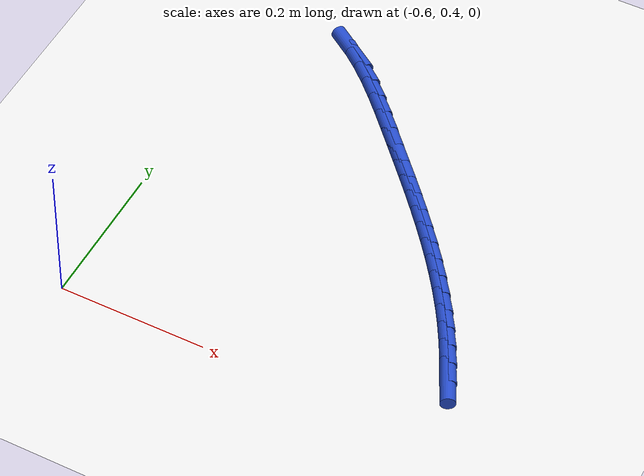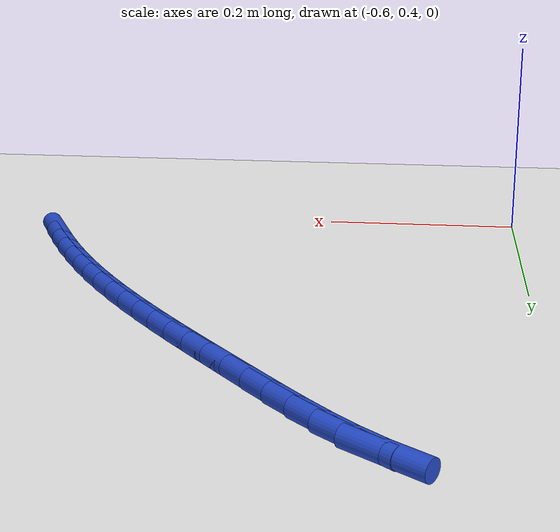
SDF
<sdf version="1.6">
 <world name="default">
  <model name="ground_plane">
   <static>1</static>
   <link name="link">
    <collision name="collision">
     <geometry><plane><normal>0 0 1</normal><size>100 100</size></plane></geometry>
     <surface><friction><ode><mu>100</mu><mu2>50</mu2></ode></friction></surface>
    </collision>
    <visual name="visual">
     <cast_shadows>0</cast_shadows>
     <geometry><plane><normal>0 0 1</normal><size>100 100</size></plane></geometry>
     <material>
      <script><uri>file://media/materials/scripts/gazebo.material</uri><name>Gazebo/WhiteGlow</name></script>
     </material>
    </visual>
   </link>
  </model>
  <model name="line">
   <link name="link_18">
    <pose>-0.1136610250490827 0.4906129922521107 0.01 0 1.57 -1.116854090541165</pose>
    <collision name="collision">
     <geometry><cylinder><radius>0.01</radius><length>0.08</length></cylinder></geometry>
    </collision>
    <visual name="visual">
     <material>
      <script><name>Gazebo/Blue</name><uri>file://media/materials/scripts/gazebo.material</uri></script>
     </material>
     <geometry><cylinder><radius>0.01</radius><length>0.08</length></cylinder></geometry>
    </visual>
   </link>
   <link name="link_19">
    <pose>-0.1258927936147837 0.5156818678269957 0.01 0 1.57 -1.086574368474886</pose>
    <collision name="collision">
     <geometry><cylinder><radius>0.01</radius><length>0.08</length></cylinder></geometry>
    </collision>
    <visual name="visual">
     <material>
      <script><name>Gazebo/Blue</name><uri>file://media/materials/scripts/gazebo.material</uri></script>
     </material>
     <geometry><cylinder><radius>0.01</radius><length>0.08</length></cylinder></geometry>
    </visual>
   </link>
   <link name="link_20">
    <pose>-0.13882186437511532 0.5402623663223383 0.01 0 1.57 -1.0547305334132813</pose>
    <collision name="collision">
     <geometry><cylinder><radius>0.01</radius><length>0.08</length></cylinder></geometry>
    </collision>
    <visual name="visual">
     <material>
      <script><name>Gazebo/Blue</name><uri>file://media/materials/scripts/gazebo.material</uri></script>
     </material>
     <geometry><cylinder><radius>0.01</radius><length>0.08</length></cylinder></geometry>
    </visual>
   </link>
   <link name="link_21">
    <pose>-0.15246621606609478 0.564311650451161 0.01 0 1.57 -1.0214702872521435</pose>
    <collision name="collision">
     <geometry><cylinder><radius>0.01</radius><length>0.08</length></cylinder></geometry>
    </collision>
    <visual name="visual">
     <material>
      <script><name>Gazebo/Blue</name><uri>file://media/materials/scripts/gazebo.material</uri></script>
     </material>
     <geometry><cylinder><radius>0.01</radius><length>0.08</length></cylinder></geometry>
    </visual>
   </link>
   <link name="link_22">
    <pose>-0.16684079655602468 0.5877926862866732 0.01 0 1.57 -0.9892203999004687</pose>
    <collision name="collision">
     <geometry><cylinder><radius>0.01</radius><length>0.08</length></cylinder></geometry>
    </collision>
    <visual name="visual">
     <material>
      <script><name>Gazebo/Blue</name><uri>file://media/materials/scripts/gazebo.material</uri></script>
     </material>
     <geometry><cylinder><radius>0.01</radius><length>0.08</length></cylinder></geometry>
    </visual>
   </link>
   <link name="link_23">
    <pose>-0.18192482380291025 0.6107368538212611 0.01 0 1.57 -0.9597387417011205</pose>
    <collision name="collision">
     <geometry><cylinder><radius>0.01</radius><length>0.08</length></cylinder></geometry>
    </collision>
    <visual name="visual">
     <material>
      <script><name>Gazebo/Blue</name><uri>file://media/materials/scripts/gazebo.material</uri></script>
     </material>
     <geometry><cylinder><radius>0.01</radius><length>0.08</length></cylinder></geometry>
    </visual>
   </link>
   <link name="link_24">
    <pose>-0.1976742264474905 0.633220126315413 0.01 0 1.57 -0.9332301981230791</pose>
    <collision name="collision">
     <geometry><cylinder><radius>0.01</radius><length>0.08</length></cylinder></geometry>
    </collision>
    <visual name="visual">
     <material>
      <script><name>Gazebo/Blue</name><uri>file://media/materials/scripts/gazebo.material</uri></script>
     </material>
     <geometry><cylinder><radius>0.01</radius><length>0.08</length></cylinder></geometry>
    </visual>
   </link>
   <link name="link_25">
    <pose>-0.21404453415197847 0.6553192409745696 0.01 0 1.57 -0.9098204373828782</pose>
    <collision name="collision">
     <geometry><cylinder><radius>0.01</radius><length>0.08</length></cylinder></geometry>
    </collision>
    <visual name="visual">
     <material>
      <script><name>Gazebo/Blue</name><uri>file://media/materials/scripts/gazebo.material</uri></script>
     </material>
     <geometry><cylinder><radius>0.01</radius><length>0.08</length></cylinder></geometry>
    </visual>
   </link>
   <link name="link_26">
    <pose>-0.2309912765785875 0.6771109350041717 0.01 0 1.57 -0.8895874778759463</pose>
    <collision name="collision">
     <geometry><cylinder><radius>0.01</radius><length>0.08</length></cylinder></geometry>
    </collision>
    <visual name="visual">
     <material>
      <script><name>Gazebo/Blue</name><uri>file://media/materials/scripts/gazebo.material</uri></script>
     </material>
     <geometry><cylinder><radius>0.01</radius><length>0.08</length></cylinder></geometry>
    </visual>
   </link>
   <link name="link_27">
    <pose>-0.24846998338953064 0.6986719456096597 0.01 0 1.57 -0.8725675650442248</pose>
    <collision name="collision">
     <geometry><cylinder><radius>0.01</radius><length>0.08</length></cylinder></geometry>
    </collision>
    <visual name="visual">
     <material>
      <script><name>Gazebo/Blue</name><uri>file://media/materials/scripts/gazebo.material</uri></script>
     </material>
     <geometry><cylinder><radius>0.01</radius><length>0.08</length></cylinder></geometry>
    </visual>
   </link>
   <link name="link_28">
    <pose>-0.2664361842470212 0.7200790099964747 0.01 0 1.57 -0.8587614408826871</pose>
    <collision name="collision">
     <geometry><cylinder><radius>0.01</radius><length>0.08</length></cylinder></geometry>
    </collision>
    <visual name="visual">
     <material>
      <script><name>Gazebo/Blue</name><uri>file://media/materials/scripts/gazebo.material</uri></script>
     </material>
     <geometry><cylinder><radius>0.01</radius><length>0.08</length></cylinder></geometry>
    </visual>
   </link>
   <link name="link_29">
    <pose>-0.2848454088132723 0.7414088653700572 0.01 0 1.57 -0.84814041578574</pose>
    <collision name="collision">
     <geometry><cylinder><radius>0.01</radius><length>0.08</length></cylinder></geometry>
    </collision>
    <visual name="visual">
     <material>
      <script><name>Gazebo/Blue</name><uri>file://media/materials/scripts/gazebo.material</uri></script>
     </material>
     <geometry><cylinder><radius>0.01</radius><length>0.08</length></cylinder></geometry>
    </visual>
   </link>
   <link name="link_30">
    <pose>-0.303653186750497 0.7627382489358477 0.01 0 1.57 -0.8406518412004007</pose>
    <collision name="collision">
     <geometry><cylinder><radius>0.01</radius><length>0.08</length></cylinder></geometry>
    </collision>
    <visual name="visual">
     <material>
      <script><name>Gazebo/Blue</name><uri>file://media/materials/scripts/gazebo.material</uri></script>
     </material>
     <geometry><cylinder><radius>0.01</radius><length>0.08</length></cylinder></geometry>
    </visual>
   </link>
   <link name="link_31">
    <pose>-0.3228150477209087 0.784143897899287 0.01 0 1.57 -0.8362237543915537</pose>
    <collision name="collision">
     <geometry><cylinder><radius>0.01</radius><length>0.08</length></cylinder></geometry>
    </collision>
    <visual name="visual">
     <material>
      <script><name>Gazebo/Blue</name><uri>file://media/materials/scripts/gazebo.material</uri></script>
     </material>
     <geometry><cylinder><radius>0.01</radius><length>0.08</length></cylinder></geometry>
    </visual>
   </link>
   <link name="link_32">
    <pose>-0.34228652138672044 0.8057025494658159 0.01 0 1.57 -0.8347032580721068</pose>
    <collision name="collision">
     <geometry><cylinder><radius>0.01</radius><length>0.08</length></cylinder></geometry>
    </collision>
    <visual name="visual">
     <material>
      <script><name>Gazebo/Blue</name><uri>file://media/materials/scripts/gazebo.material</uri></script>
     </material>
     <geometry><cylinder><radius>0.01</radius><length>0.08</length></cylinder></geometry>
    </visual>
   </link>
   <link name="link_33">
    <pose>-0.3620237470958689 0.82748875237254 0.01 0 1.57 -0.8306717805993968</pose>
    <collision name="collision">
     <geometry><cylinder><radius>0.01</radius><length>0.08</length></cylinder></geometry>
    </collision>
    <visual name="visual">
     <material>
      <script><name>Gazebo/Blue</name><uri>file://media/materials/scripts/gazebo.material</uri></script>
     </material>
     <geometry><cylinder><radius>0.01</radius><length>0.08</length></cylinder></geometry>
    </visual>
   </link>
   <link name="link_34">
    <pose>-0.38203300642723415 0.8493970697009552 0.01 0 1.57 -0.814907881046073</pose>
    <collision name="collision">
     <geometry><cylinder><radius>0.01</radius><length>0.08</length></cylinder></geometry>
    </collision>
    <visual name="visual">
     <material>
      <script><name>Gazebo/Blue</name><uri>file://media/materials/scripts/gazebo.material</uri></script>
     </material>
     <geometry><cylinder><radius>0.01</radius><length>0.08</length></cylinder></geometry>
    </visual>
   </link>
   <link name="link_35">
    <pose>-0.4024073019816335 0.8710107792208569 0.01 0 1.57 -0.7861288567727711</pose>
    <collision name="collision">
     <geometry><cylinder><radius>0.01</radius><length>0.08</length></cylinder></geometry>
    </collision>
    <visual name="visual">
     <material>
      <script><name>Gazebo/Blue</name><uri>file://media/materials/scripts/gazebo.material</uri></script>
     </material>
     <geometry><cylinder><radius>0.01</radius><length>0.08</length></cylinder></geometry>
    </visual>
   </link>
   <link name="link_36">
    <pose>-0.423248257366623 0.8918822135781244 0.01 0 1.57 -0.743375793940652</pose>
    <collision name="collision">
     <geometry><cylinder><radius>0.01</radius><length>0.08</length></cylinder></geometry>
    </collision>
    <visual name="visual">
     <material>
      <script><name>Gazebo/Blue</name><uri>file://media/materials/scripts/gazebo.material</uri></script>
     </material>
     <geometry><cylinder><radius>0.01</radius><length>0.08</length></cylinder></geometry>
    </visual>
   </link>
   <link name="link_37">
    <pose>-0.4446574961897598 0.9115637054186377 0.01 0 1.57 -0.6851629413240752</pose>
    <collision name="collision">
     <geometry><cylinder><radius>0.01</radius><length>0.08</length></cylinder></geometry>
    </collision>
    <visual name="visual">
     <material>
      <script><name>Gazebo/Blue</name><uri>file://media/materials/scripts/gazebo.material</uri></script>
     </material>
     <geometry><cylinder><radius>0.01</radius><length>0.08</length></cylinder></geometry>
    </visual>
   </link>
   <link name="link_38">
    <pose>-0.4667366420585996 0.9296075873882753 0.01 0 1.57 -0.6096422793715497</pose>
    <collision name="collision">
     <geometry><cylinder><radius>0.01</radius><length>0.08</length></cylinder></geometry>
    </collision>
    <visual name="visual">
     <material>
      <script><name>Gazebo/Blue</name><uri>file://media/materials/scripts/gazebo.material</uri></script>
     </material>
     <geometry><cylinder><radius>0.01</radius><length>0.08</length></cylinder></geometry>
    </visual>
   </link>
  </model>
 </world>
</sdf>
